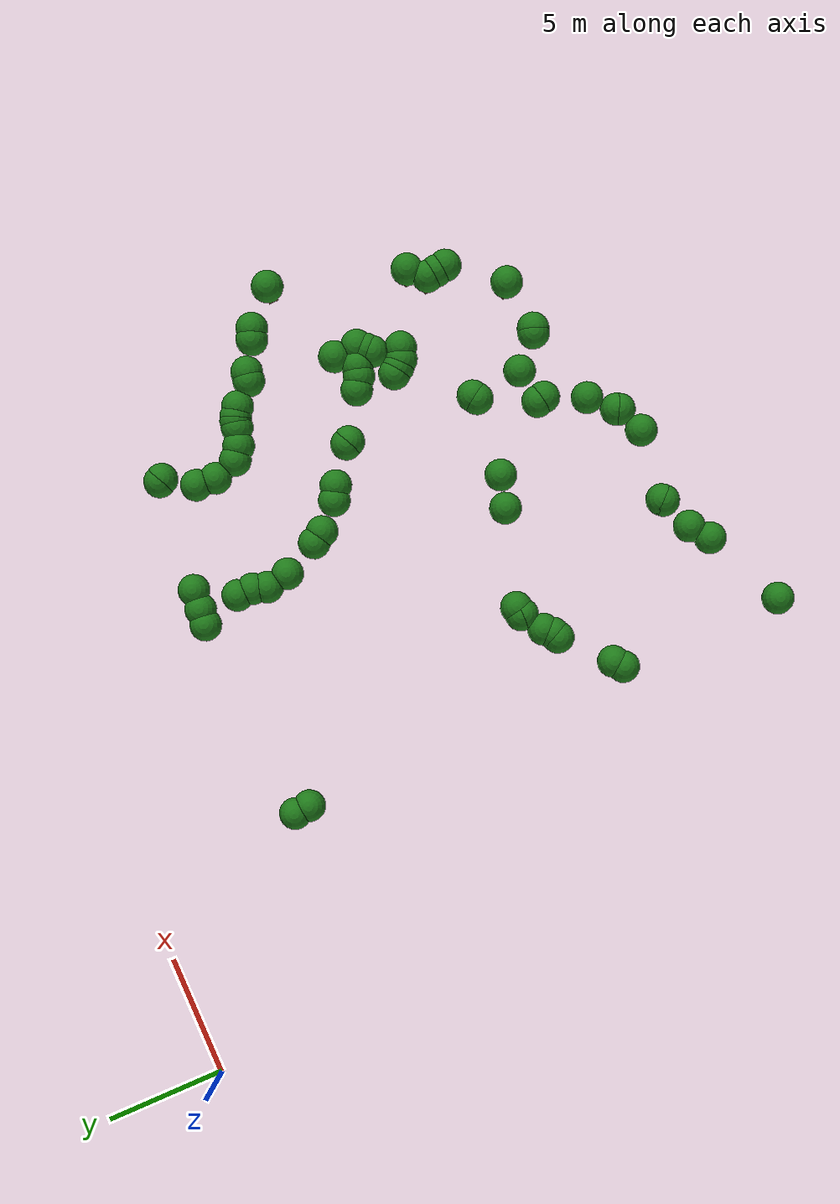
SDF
<sdf version="1.8">
 <model name="bush_trail_nav_walls">
  <static>true</static>
  <link name="trail_wall_290">
   <pose>16.921 -6.891 0.750 0 0 0</pose>
   <collision name="c"><geometry><box><size>0.400 0.400 1.500</size></box></geometry></collision>
   <visual name="v">
    <geometry><box><size>0.400 0.400 1.500</size></box></geometry>
    <material><ambient>0.35 0.25 0.15 1</ambient><diffuse>0.45 0.32 0.18 1</diffuse></material>
   </visual>
   <visual name="leaves">
    <pose>0 0 1.200 0 0 0</pose>
    <geometry><sphere><radius>0.650</radius></sphere></geometry>
    <material><ambient>0.08 0.35 0.08 1</ambient><diffuse>0.12 0.48 0.10 1</diffuse></material>
   </visual>
  </link>
  <link name="trail_wall_291">
   <pose>17.566 -6.950 0.750 0 0 0</pose>
   <collision name="c"><geometry><box><size>0.400 0.400 1.500</size></box></geometry></collision>
   <visual name="v">
    <geometry><box><size>0.400 0.400 1.500</size></box></geometry>
    <material><ambient>0.35 0.25 0.15 1</ambient><diffuse>0.45 0.32 0.18 1</diffuse></material>
   </visual>
   <visual name="leaves">
    <pose>0 0 1.200 0 0 0</pose>
    <geometry><sphere><radius>0.650</radius></sphere></geometry>
    <material><ambient>0.08 0.35 0.08 1</ambient><diffuse>0.12 0.48 0.10 1</diffuse></material>
   </visual>
  </link>
  <link name="trail_wall_292">
   <pose>18.387 -7.009 0.750 0 0 0</pose>
   <collision name="c"><geometry><box><size>0.400 0.400 1.500</size></box></geometry></collision>
   <visual name="v">
    <geometry><box><size>0.400 0.400 1.500</size></box></geometry>
    <material><ambient>0.35 0.25 0.15 1</ambient><diffuse>0.45 0.32 0.18 1</diffuse></material>
   </visual>
   <visual name="leaves">
    <pose>0 0 1.200 0 0 0</pose>
    <geometry><sphere><radius>0.650</radius></sphere></geometry>
    <material><ambient>0.08 0.35 0.08 1</ambient><diffuse>0.12 0.48 0.10 1</diffuse></material>
   </visual>
  </link>
  <link name="trail_wall_293">
   <pose>8.592 -7.185 0.750 0 0 0</pose>
   <collision name="c"><geometry><box><size>0.400 0.400 1.500</size></box></geometry></collision>
   <visual name="v">
    <geometry><box><size>0.400 0.400 1.500</size></box></geometry>
    <material><ambient>0.35 0.25 0.15 1</ambient><diffuse>0.45 0.32 0.18 1</diffuse></material>
   </visual>
   <visual name="leaves">
    <pose>0 0 1.200 0 0 0</pose>
    <geometry><sphere><radius>0.650</radius></sphere></geometry>
    <material><ambient>0.08 0.35 0.08 1</ambient><diffuse>0.12 0.48 0.10 1</diffuse></material>
   </visual>
  </link>
  <link name="trail_wall_295">
   <pose>22.903 -7.478 0.750 0 0 0</pose>
   <collision name="c"><geometry><box><size>0.400 0.400 1.500</size></box></geometry></collision>
   <visual name="v">
    <geometry><box><size>0.400 0.400 1.500</size></box></geometry>
    <material><ambient>0.35 0.25 0.15 1</ambient><diffuse>0.45 0.32 0.18 1</diffuse></material>
   </visual>
   <visual name="leaves">
    <pose>0 0 1.200 0 0 0</pose>
    <geometry><sphere><radius>0.650</radius></sphere></geometry>
    <material><ambient>0.08 0.35 0.08 1</ambient><diffuse>0.12 0.48 0.10 1</diffuse></material>
   </visual>
  </link>
  <link name="trail_wall_296">
   <pose>22.962 -7.595 0.750 0 0 0</pose>
   <collision name="c"><geometry><box><size>0.400 0.400 1.500</size></box></geometry></collision>
   <visual name="v">
    <geometry><box><size>0.400 0.400 1.500</size></box></geometry>
    <material><ambient>0.35 0.25 0.15 1</ambient><diffuse>0.45 0.32 0.18 1</diffuse></material>
   </visual>
   <visual name="leaves">
    <pose>0 0 1.200 0 0 0</pose>
    <geometry><sphere><radius>0.650</radius></sphere></geometry>
    <material><ambient>0.08 0.35 0.08 1</ambient><diffuse>0.12 0.48 0.10 1</diffuse></material>
   </visual>
  </link>
  <link name="trail_wall_299">
   <pose>8.651 -7.830 0.750 0 0 0</pose>
   <collision name="c"><geometry><box><size>0.400 0.400 1.500</size></box></geometry></collision>
   <visual name="v">
    <geometry><box><size>0.400 0.400 1.500</size></box></geometry>
    <material><ambient>0.35 0.25 0.15 1</ambient><diffuse>0.45 0.32 0.18 1</diffuse></material>
   </visual>
   <visual name="leaves">
    <pose>0 0 1.200 0 0 0</pose>
    <geometry><sphere><radius>0.650</radius></sphere></geometry>
    <material><ambient>0.08 0.35 0.08 1</ambient><diffuse>0.12 0.48 0.10 1</diffuse></material>
   </visual>
  </link>
  <link name="trail_wall_308">
   <pose>17.507 -8.534 0.750 0 0 0</pose>
   <collision name="c"><geometry><box><size>0.400 0.400 1.500</size></box></geometry></collision>
   <visual name="v">
    <geometry><box><size>0.400 0.400 1.500</size></box></geometry>
    <material><ambient>0.35 0.25 0.15 1</ambient><diffuse>0.45 0.32 0.18 1</diffuse></material>
   </visual>
   <visual name="leaves">
    <pose>0 0 1.200 0 0 0</pose>
    <geometry><sphere><radius>0.650</radius></sphere></geometry>
    <material><ambient>0.08 0.35 0.08 1</ambient><diffuse>0.12 0.48 0.10 1</diffuse></material>
   </visual>
  </link>
  <link name="trail_wall_311">
   <pose>22.199 -8.768 0.750 0 0 0</pose>
   <collision name="c"><geometry><box><size>0.400 0.400 1.500</size></box></geometry></collision>
   <visual name="v">
    <geometry><box><size>0.400 0.400 1.500</size></box></geometry>
    <material><ambient>0.35 0.25 0.15 1</ambient><diffuse>0.45 0.32 0.18 1</diffuse></material>
   </visual>
   <visual name="leaves">
    <pose>0 0 1.200 0 0 0</pose>
    <geometry><sphere><radius>0.650</radius></sphere></geometry>
    <material><ambient>0.08 0.35 0.08 1</ambient><diffuse>0.12 0.48 0.10 1</diffuse></material>
   </visual>
  </link>
  <link name="trail_wall_315">
   <pose>17.507 -9.179 0.750 0 0 0</pose>
   <collision name="c"><geometry><box><size>0.400 0.400 1.500</size></box></geometry></collision>
   <visual name="v">
    <geometry><box><size>0.400 0.400 1.500</size></box></geometry>
    <material><ambient>0.35 0.25 0.15 1</ambient><diffuse>0.45 0.32 0.18 1</diffuse></material>
   </visual>
   <visual name="leaves">
    <pose>0 0 1.200 0 0 0</pose>
    <geometry><sphere><radius>0.650</radius></sphere></geometry>
    <material><ambient>0.08 0.35 0.08 1</ambient><diffuse>0.12 0.48 0.10 1</diffuse></material>
   </visual>
  </link>
  <link name="trail_wall_318">
   <pose>22.141 -9.589 0.750 0 0 0</pose>
   <collision name="c"><geometry><box><size>0.400 0.400 1.500</size></box></geometry></collision>
   <visual name="v">
    <geometry><box><size>0.400 0.400 1.500</size></box></geometry>
    <material><ambient>0.35 0.25 0.15 1</ambient><diffuse>0.45 0.32 0.18 1</diffuse></material>
   </visual>
   <visual name="leaves">
    <pose>0 0 1.200 0 0 0</pose>
    <geometry><sphere><radius>0.650</radius></sphere></geometry>
    <material><ambient>0.08 0.35 0.08 1</ambient><diffuse>0.12 0.48 0.10 1</diffuse></material>
   </visual>
  </link>
  <link name="trail_wall_319">
   <pose>17.331 -9.765 0.750 0 0 0</pose>
   <collision name="c"><geometry><box><size>0.400 0.400 1.500</size></box></geometry></collision>
   <visual name="v">
    <geometry><box><size>0.400 0.400 1.500</size></box></geometry>
    <material><ambient>0.35 0.25 0.15 1</ambient><diffuse>0.45 0.32 0.18 1</diffuse></material>
   </visual>
   <visual name="leaves">
    <pose>0 0 1.200 0 0 0</pose>
    <geometry><sphere><radius>0.650</radius></sphere></geometry>
    <material><ambient>0.08 0.35 0.08 1</ambient><diffuse>0.12 0.48 0.10 1</diffuse></material>
   </visual>
  </link>
  <link name="trail_wall_324">
   <pose>22.493 -10.587 0.750 0 0 0</pose>
   <collision name="c"><geometry><box><size>0.400 0.400 1.500</size></box></geometry></collision>
   <visual name="v">
    <geometry><box><size>0.400 0.400 1.500</size></box></geometry>
    <material><ambient>0.35 0.25 0.15 1</ambient><diffuse>0.45 0.32 0.18 1</diffuse></material>
   </visual>
   <visual name="leaves">
    <pose>0 0 1.200 0 0 0</pose>
    <geometry><sphere><radius>0.650</radius></sphere></geometry>
    <material><ambient>0.08 0.35 0.08 1</ambient><diffuse>0.12 0.48 0.10 1</diffuse></material>
   </visual>
  </link>
  <link name="trail_wall_325">
   <pose>17.507 -10.704 0.750 0 0 0</pose>
   <collision name="c"><geometry><box><size>0.400 0.400 1.500</size></box></geometry></collision>
   <visual name="v">
    <geometry><box><size>0.400 0.400 1.500</size></box></geometry>
    <material><ambient>0.35 0.25 0.15 1</ambient><diffuse>0.45 0.32 0.18 1</diffuse></material>
   </visual>
   <visual name="leaves">
    <pose>0 0 1.200 0 0 0</pose>
    <geometry><sphere><radius>0.650</radius></sphere></geometry>
    <material><ambient>0.08 0.35 0.08 1</ambient><diffuse>0.12 0.48 0.10 1</diffuse></material>
   </visual>
  </link>
  <link name="trail_wall_328">
   <pose>22.962 -10.938 0.750 0 0 0</pose>
   <collision name="c"><geometry><box><size>0.400 0.400 1.500</size></box></geometry></collision>
   <visual name="v">
    <geometry><box><size>0.400 0.400 1.500</size></box></geometry>
    <material><ambient>0.35 0.25 0.15 1</ambient><diffuse>0.45 0.32 0.18 1</diffuse></material>
   </visual>
   <visual name="leaves">
    <pose>0 0 1.200 0 0 0</pose>
    <geometry><sphere><radius>0.650</radius></sphere></geometry>
    <material><ambient>0.08 0.35 0.08 1</ambient><diffuse>0.12 0.48 0.10 1</diffuse></material>
   </visual>
  </link>
  <link name="trail_wall_331">
   <pose>23.666 -11.173 0.750 0 0 0</pose>
   <collision name="c"><geometry><box><size>0.400 0.400 1.500</size></box></geometry></collision>
   <visual name="v">
    <geometry><box><size>0.400 0.400 1.500</size></box></geometry>
    <material><ambient>0.35 0.25 0.15 1</ambient><diffuse>0.45 0.32 0.18 1</diffuse></material>
   </visual>
   <visual name="leaves">
    <pose>0 0 1.200 0 0 0</pose>
    <geometry><sphere><radius>0.650</radius></sphere></geometry>
    <material><ambient>0.08 0.35 0.08 1</ambient><diffuse>0.12 0.48 0.10 1</diffuse></material>
   </visual>
  </link>
  <link name="trail_wall_332">
   <pose>23.959 -11.232 0.750 0 0 0</pose>
   <collision name="c"><geometry><box><size>0.400 0.400 1.500</size></box></geometry></collision>
   <visual name="v">
    <geometry><box><size>0.400 0.400 1.500</size></box></geometry>
    <material><ambient>0.35 0.25 0.15 1</ambient><diffuse>0.45 0.32 0.18 1</diffuse></material>
   </visual>
   <visual name="leaves">
    <pose>0 0 1.200 0 0 0</pose>
    <geometry><sphere><radius>0.650</radius></sphere></geometry>
    <material><ambient>0.08 0.35 0.08 1</ambient><diffuse>0.12 0.48 0.10 1</diffuse></material>
   </visual>
  </link>
  <link name="trail_wall_333">
   <pose>24.076 -11.290 0.750 0 0 0</pose>
   <collision name="c"><geometry><box><size>0.400 0.400 1.500</size></box></geometry></collision>
   <visual name="v">
    <geometry><box><size>0.400 0.400 1.500</size></box></geometry>
    <material><ambient>0.35 0.25 0.15 1</ambient><diffuse>0.45 0.32 0.18 1</diffuse></material>
   </visual>
   <visual name="leaves">
    <pose>0 0 1.200 0 0 0</pose>
    <geometry><sphere><radius>0.650</radius></sphere></geometry>
    <material><ambient>0.08 0.35 0.08 1</ambient><diffuse>0.12 0.48 0.10 1</diffuse></material>
   </visual>
  </link>
  <link name="trail_wall_336">
   <pose>24.428 -11.525 0.750 0 0 0</pose>
   <collision name="c"><geometry><box><size>0.400 0.400 1.500</size></box></geometry></collision>
   <visual name="v">
    <geometry><box><size>0.400 0.400 1.500</size></box></geometry>
    <material><ambient>0.35 0.25 0.15 1</ambient><diffuse>0.45 0.32 0.18 1</diffuse></material>
   </visual>
   <visual name="leaves">
    <pose>0 0 1.200 0 0 0</pose>
    <geometry><sphere><radius>0.650</radius></sphere></geometry>
    <material><ambient>0.08 0.35 0.08 1</ambient><diffuse>0.12 0.48 0.10 1</diffuse></material>
   </visual>
  </link>
  <link name="trail_wall_341">
   <pose>18.211 -12.170 0.750 0 0 0</pose>
   <collision name="c"><geometry><box><size>0.400 0.400 1.500</size></box></geometry></collision>
   <visual name="v">
    <geometry><box><size>0.400 0.400 1.500</size></box></geometry>
    <material><ambient>0.35 0.25 0.15 1</ambient><diffuse>0.45 0.32 0.18 1</diffuse></material>
   </visual>
   <visual name="leaves">
    <pose>0 0 1.200 0 0 0</pose>
    <geometry><sphere><radius>0.650</radius></sphere></geometry>
    <material><ambient>0.08 0.35 0.08 1</ambient><diffuse>0.12 0.48 0.10 1</diffuse></material>
   </visual>
  </link>
  <link name="trail_wall_343">
   <pose>25.191 -12.346 0.750 0 0 0</pose>
   <collision name="c"><geometry><box><size>0.400 0.400 1.500</size></box></geometry></collision>
   <visual name="v">
    <geometry><box><size>0.400 0.400 1.500</size></box></geometry>
    <material><ambient>0.35 0.25 0.15 1</ambient><diffuse>0.45 0.32 0.18 1</diffuse></material>
   </visual>
   <visual name="leaves">
    <pose>0 0 1.200 0 0 0</pose>
    <geometry><sphere><radius>0.650</radius></sphere></geometry>
    <material><ambient>0.08 0.35 0.08 1</ambient><diffuse>0.12 0.48 0.10 1</diffuse></material>
   </visual>
  </link>
  <link name="trail_wall_344">
   <pose>25.543 -12.405 0.750 0 0 0</pose>
   <collision name="c"><geometry><box><size>0.400 0.400 1.500</size></box></geometry></collision>
   <visual name="v">
    <geometry><box><size>0.400 0.400 1.500</size></box></geometry>
    <material><ambient>0.35 0.25 0.15 1</ambient><diffuse>0.45 0.32 0.18 1</diffuse></material>
   </visual>
   <visual name="leaves">
    <pose>0 0 1.200 0 0 0</pose>
    <geometry><sphere><radius>0.650</radius></sphere></geometry>
    <material><ambient>0.08 0.35 0.08 1</ambient><diffuse>0.12 0.48 0.10 1</diffuse></material>
   </visual>
  </link>
  <link name="trail_wall_347">
   <pose>18.504 -12.639 0.750 0 0 0</pose>
   <collision name="c"><geometry><box><size>0.400 0.400 1.500</size></box></geometry></collision>
   <visual name="v">
    <geometry><box><size>0.400 0.400 1.500</size></box></geometry>
    <material><ambient>0.35 0.25 0.15 1</ambient><diffuse>0.45 0.32 0.18 1</diffuse></material>
   </visual>
   <visual name="leaves">
    <pose>0 0 1.200 0 0 0</pose>
    <geometry><sphere><radius>0.650</radius></sphere></geometry>
    <material><ambient>0.08 0.35 0.08 1</ambient><diffuse>0.12 0.48 0.10 1</diffuse></material>
   </visual>
  </link>
  <link name="trail_wall_353">
   <pose>26.657 -13.109 0.750 0 0 0</pose>
   <collision name="c"><geometry><box><size>0.400 0.400 1.500</size></box></geometry></collision>
   <visual name="v">
    <geometry><box><size>0.400 0.400 1.500</size></box></geometry>
    <material><ambient>0.35 0.25 0.15 1</ambient><diffuse>0.45 0.32 0.18 1</diffuse></material>
   </visual>
   <visual name="leaves">
    <pose>0 0 1.200 0 0 0</pose>
    <geometry><sphere><radius>0.650</radius></sphere></geometry>
    <material><ambient>0.08 0.35 0.08 1</ambient><diffuse>0.12 0.48 0.10 1</diffuse></material>
   </visual>
  </link>
  <link name="trail_wall_356">
   <pose>27.067 -13.284 0.750 0 0 0</pose>
   <collision name="c"><geometry><box><size>0.400 0.400 1.500</size></box></geometry></collision>
   <visual name="v">
    <geometry><box><size>0.400 0.400 1.500</size></box></geometry>
    <material><ambient>0.35 0.25 0.15 1</ambient><diffuse>0.45 0.32 0.18 1</diffuse></material>
   </visual>
   <visual name="leaves">
    <pose>0 0 1.200 0 0 0</pose>
    <geometry><sphere><radius>0.650</radius></sphere></geometry>
    <material><ambient>0.08 0.35 0.08 1</ambient><diffuse>0.12 0.48 0.10 1</diffuse></material>
   </visual>
  </link>
  <link name="trail_wall_359">
   <pose>19.443 -13.578 0.750 0 0 0</pose>
   <collision name="c"><geometry><box><size>0.400 0.400 1.500</size></box></geometry></collision>
   <visual name="v">
    <geometry><box><size>0.400 0.400 1.500</size></box></geometry>
    <material><ambient>0.35 0.25 0.15 1</ambient><diffuse>0.45 0.32 0.18 1</diffuse></material>
   </visual>
   <visual name="leaves">
    <pose>0 0 1.200 0 0 0</pose>
    <geometry><sphere><radius>0.650</radius></sphere></geometry>
    <material><ambient>0.08 0.35 0.08 1</ambient><diffuse>0.12 0.48 0.10 1</diffuse></material>
   </visual>
  </link>
  <link name="trail_wall_361">
   <pose>19.971 -13.871 0.750 0 0 0</pose>
   <collision name="c"><geometry><box><size>0.400 0.400 1.500</size></box></geometry></collision>
   <visual name="v">
    <geometry><box><size>0.400 0.400 1.500</size></box></geometry>
    <material><ambient>0.35 0.25 0.15 1</ambient><diffuse>0.45 0.32 0.18 1</diffuse></material>
   </visual>
   <visual name="leaves">
    <pose>0 0 1.200 0 0 0</pose>
    <geometry><sphere><radius>0.650</radius></sphere></geometry>
    <material><ambient>0.08 0.35 0.08 1</ambient><diffuse>0.12 0.48 0.10 1</diffuse></material>
   </visual>
  </link>
  <link name="trail_wall_365">
   <pose>28.358 -14.516 0.750 0 0 0</pose>
   <collision name="c"><geometry><box><size>0.400 0.400 1.500</size></box></geometry></collision>
   <visual name="v">
    <geometry><box><size>0.400 0.400 1.500</size></box></geometry>
    <material><ambient>0.35 0.25 0.15 1</ambient><diffuse>0.45 0.32 0.18 1</diffuse></material>
   </visual>
   <visual name="leaves">
    <pose>0 0 1.200 0 0 0</pose>
    <geometry><sphere><radius>0.650</radius></sphere></geometry>
    <material><ambient>0.08 0.35 0.08 1</ambient><diffuse>0.12 0.48 0.10 1</diffuse></material>
   </visual>
  </link>
  <link name="trail_wall_369">
   <pose>21.320 -14.927 0.750 0 0 0</pose>
   <collision name="c"><geometry><box><size>0.400 0.400 1.500</size></box></geometry></collision>
   <visual name="v">
    <geometry><box><size>0.400 0.400 1.500</size></box></geometry>
    <material><ambient>0.35 0.25 0.15 1</ambient><diffuse>0.45 0.32 0.18 1</diffuse></material>
   </visual>
   <visual name="leaves">
    <pose>0 0 1.200 0 0 0</pose>
    <geometry><sphere><radius>0.650</radius></sphere></geometry>
    <material><ambient>0.08 0.35 0.08 1</ambient><diffuse>0.12 0.48 0.10 1</diffuse></material>
   </visual>
  </link>
  <link name="trail_wall_370">
   <pose>21.378 -15.044 0.750 0 0 0</pose>
   <collision name="c"><geometry><box><size>0.400 0.400 1.500</size></box></geometry></collision>
   <visual name="v">
    <geometry><box><size>0.400 0.400 1.500</size></box></geometry>
    <material><ambient>0.35 0.25 0.15 1</ambient><diffuse>0.45 0.32 0.18 1</diffuse></material>
   </visual>
   <visual name="leaves">
    <pose>0 0 1.200 0 0 0</pose>
    <geometry><sphere><radius>0.650</radius></sphere></geometry>
    <material><ambient>0.08 0.35 0.08 1</ambient><diffuse>0.12 0.48 0.10 1</diffuse></material>
   </visual>
  </link>
  <link name="trail_wall_378">
   <pose>24.721 -15.865 0.750 0 0 0</pose>
   <collision name="c"><geometry><box><size>0.400 0.400 1.500</size></box></geometry></collision>
   <visual name="v">
    <geometry><box><size>0.400 0.400 1.500</size></box></geometry>
    <material><ambient>0.35 0.25 0.15 1</ambient><diffuse>0.45 0.32 0.18 1</diffuse></material>
   </visual>
   <visual name="leaves">
    <pose>0 0 1.200 0 0 0</pose>
    <geometry><sphere><radius>0.650</radius></sphere></geometry>
    <material><ambient>0.08 0.35 0.08 1</ambient><diffuse>0.12 0.48 0.10 1</diffuse></material>
   </visual>
  </link>
  <link name="trail_wall_380">
   <pose>23.138 -16.158 0.750 0 0 0</pose>
   <collision name="c"><geometry><box><size>0.400 0.400 1.500</size></box></geometry></collision>
   <visual name="v">
    <geometry><box><size>0.400 0.400 1.500</size></box></geometry>
    <material><ambient>0.35 0.25 0.15 1</ambient><diffuse>0.45 0.32 0.18 1</diffuse></material>
   </visual>
   <visual name="leaves">
    <pose>0 0 1.200 0 0 0</pose>
    <geometry><sphere><radius>0.650</radius></sphere></geometry>
    <material><ambient>0.08 0.35 0.08 1</ambient><diffuse>0.12 0.48 0.10 1</diffuse></material>
   </visual>
  </link>
  <link name="trail_wall_382">
   <pose>23.607 -16.452 0.750 0 0 0</pose>
   <collision name="c"><geometry><box><size>0.400 0.400 1.500</size></box></geometry></collision>
   <visual name="v">
    <geometry><box><size>0.400 0.400 1.500</size></box></geometry>
    <material><ambient>0.35 0.25 0.15 1</ambient><diffuse>0.45 0.32 0.18 1</diffuse></material>
   </visual>
   <visual name="leaves">
    <pose>0 0 1.200 0 0 0</pose>
    <geometry><sphere><radius>0.650</radius></sphere></geometry>
    <material><ambient>0.08 0.35 0.08 1</ambient><diffuse>0.12 0.48 0.10 1</diffuse></material>
   </visual>
  </link>
  <link name="trail_wall_383">
   <pose>24.018 -16.569 0.750 0 0 0</pose>
   <collision name="c"><geometry><box><size>0.400 0.400 1.500</size></box></geometry></collision>
   <visual name="v">
    <geometry><box><size>0.400 0.400 1.500</size></box></geometry>
    <material><ambient>0.35 0.25 0.15 1</ambient><diffuse>0.45 0.32 0.18 1</diffuse></material>
   </visual>
   <visual name="leaves">
    <pose>0 0 1.200 0 0 0</pose>
    <geometry><sphere><radius>0.650</radius></sphere></geometry>
    <material><ambient>0.08 0.35 0.08 1</ambient><diffuse>0.12 0.48 0.10 1</diffuse></material>
   </visual>
  </link>
  <link name="trail_wall_385">
   <pose>24.780 -16.862 0.750 0 0 0</pose>
   <collision name="c"><geometry><box><size>0.400 0.400 1.500</size></box></geometry></collision>
   <visual name="v">
    <geometry><box><size>0.400 0.400 1.500</size></box></geometry>
    <material><ambient>0.35 0.25 0.15 1</ambient><diffuse>0.45 0.32 0.18 1</diffuse></material>
   </visual>
   <visual name="leaves">
    <pose>0 0 1.200 0 0 0</pose>
    <geometry><sphere><radius>0.650</radius></sphere></geometry>
    <material><ambient>0.08 0.35 0.08 1</ambient><diffuse>0.12 0.48 0.10 1</diffuse></material>
   </visual>
  </link>
  <link name="trail_wall_387">
   <pose>24.487 -17.155 0.750 0 0 0</pose>
   <collision name="c"><geometry><box><size>0.400 0.400 1.500</size></box></geometry></collision>
   <visual name="v">
    <geometry><box><size>0.400 0.400 1.500</size></box></geometry>
    <material><ambient>0.35 0.25 0.15 1</ambient><diffuse>0.45 0.32 0.18 1</diffuse></material>
   </visual>
   <visual name="leaves">
    <pose>0 0 1.200 0 0 0</pose>
    <geometry><sphere><radius>0.650</radius></sphere></geometry>
    <material><ambient>0.08 0.35 0.08 1</ambient><diffuse>0.12 0.48 0.10 1</diffuse></material>
   </visual>
  </link>
  <link name="trail_wall_388">
   <pose>24.311 -17.331 0.750 0 0 0</pose>
   <collision name="c"><geometry><box><size>0.400 0.400 1.500</size></box></geometry></collision>
   <visual name="v">
    <geometry><box><size>0.400 0.400 1.500</size></box></geometry>
    <material><ambient>0.35 0.25 0.15 1</ambient><diffuse>0.45 0.32 0.18 1</diffuse></material>
   </visual>
   <visual name="leaves">
    <pose>0 0 1.200 0 0 0</pose>
    <geometry><sphere><radius>0.650</radius></sphere></geometry>
    <material><ambient>0.08 0.35 0.08 1</ambient><diffuse>0.12 0.48 0.10 1</diffuse></material>
   </visual>
  </link>
  <link name="trail_wall_390">
   <pose>23.138 -17.801 0.750 0 0 0</pose>
   <collision name="c"><geometry><box><size>0.400 0.400 1.500</size></box></geometry></collision>
   <visual name="v">
    <geometry><box><size>0.400 0.400 1.500</size></box></geometry>
    <material><ambient>0.35 0.25 0.15 1</ambient><diffuse>0.45 0.32 0.18 1</diffuse></material>
   </visual>
   <visual name="leaves">
    <pose>0 0 1.200 0 0 0</pose>
    <geometry><sphere><radius>0.650</radius></sphere></geometry>
    <material><ambient>0.08 0.35 0.08 1</ambient><diffuse>0.12 0.48 0.10 1</diffuse></material>
   </visual>
  </link>
  <link name="trail_wall_391">
   <pose>23.314 -18.035 0.750 0 0 0</pose>
   <collision name="c"><geometry><box><size>0.400 0.400 1.500</size></box></geometry></collision>
   <visual name="v">
    <geometry><box><size>0.400 0.400 1.500</size></box></geometry>
    <material><ambient>0.35 0.25 0.15 1</ambient><diffuse>0.45 0.32 0.18 1</diffuse></material>
   </visual>
   <visual name="leaves">
    <pose>0 0 1.200 0 0 0</pose>
    <geometry><sphere><radius>0.650</radius></sphere></geometry>
    <material><ambient>0.08 0.35 0.08 1</ambient><diffuse>0.12 0.48 0.10 1</diffuse></material>
   </visual>
  </link>
  <link name="trail_wall_392">
   <pose>23.548 -18.270 0.750 0 0 0</pose>
   <collision name="c"><geometry><box><size>0.400 0.400 1.500</size></box></geometry></collision>
   <visual name="v">
    <geometry><box><size>0.400 0.400 1.500</size></box></geometry>
    <material><ambient>0.35 0.25 0.15 1</ambient><diffuse>0.45 0.32 0.18 1</diffuse></material>
   </visual>
   <visual name="leaves">
    <pose>0 0 1.200 0 0 0</pose>
    <geometry><sphere><radius>0.650</radius></sphere></geometry>
    <material><ambient>0.08 0.35 0.08 1</ambient><diffuse>0.12 0.48 0.10 1</diffuse></material>
   </visual>
  </link>
  <link name="trail_wall_393">
   <pose>24.018 -18.446 0.750 0 0 0</pose>
   <collision name="c"><geometry><box><size>0.400 0.400 1.500</size></box></geometry></collision>
   <visual name="v">
    <geometry><box><size>0.400 0.400 1.500</size></box></geometry>
    <material><ambient>0.35 0.25 0.15 1</ambient><diffuse>0.45 0.32 0.18 1</diffuse></material>
   </visual>
   <visual name="leaves">
    <pose>0 0 1.200 0 0 0</pose>
    <geometry><sphere><radius>0.650</radius></sphere></geometry>
    <material><ambient>0.08 0.35 0.08 1</ambient><diffuse>0.12 0.48 0.10 1</diffuse></material>
   </visual>
  </link>
  <link name="trail_wall_394">
   <pose>12.639 -18.563 0.750 0 0 0</pose>
   <collision name="c"><geometry><box><size>0.400 0.400 1.500</size></box></geometry></collision>
   <visual name="v">
    <geometry><box><size>0.400 0.400 1.500</size></box></geometry>
    <material><ambient>0.35 0.25 0.15 1</ambient><diffuse>0.45 0.32 0.18 1</diffuse></material>
   </visual>
   <visual name="leaves">
    <pose>0 0 1.200 0 0 0</pose>
    <geometry><sphere><radius>0.650</radius></sphere></geometry>
    <material><ambient>0.08 0.35 0.08 1</ambient><diffuse>0.12 0.48 0.10 1</diffuse></material>
   </visual>
  </link>
  <link name="trail_wall_395">
   <pose>12.287 -18.622 0.750 0 0 0</pose>
   <collision name="c"><geometry><box><size>0.400 0.400 1.500</size></box></geometry></collision>
   <visual name="v">
    <geometry><box><size>0.400 0.400 1.500</size></box></geometry>
    <material><ambient>0.35 0.25 0.15 1</ambient><diffuse>0.45 0.32 0.18 1</diffuse></material>
   </visual>
   <visual name="leaves">
    <pose>0 0 1.200 0 0 0</pose>
    <geometry><sphere><radius>0.650</radius></sphere></geometry>
    <material><ambient>0.08 0.35 0.08 1</ambient><diffuse>0.12 0.48 0.10 1</diffuse></material>
   </visual>
  </link>
  <link name="trail_wall_396">
   <pose>12.287 -18.680 0.750 0 0 0</pose>
   <collision name="c"><geometry><box><size>0.400 0.400 1.500</size></box></geometry></collision>
   <visual name="v">
    <geometry><box><size>0.400 0.400 1.500</size></box></geometry>
    <material><ambient>0.35 0.25 0.15 1</ambient><diffuse>0.45 0.32 0.18 1</diffuse></material>
   </visual>
   <visual name="leaves">
    <pose>0 0 1.200 0 0 0</pose>
    <geometry><sphere><radius>0.650</radius></sphere></geometry>
    <material><ambient>0.08 0.35 0.08 1</ambient><diffuse>0.12 0.48 0.10 1</diffuse></material>
   </visual>
  </link>
  <link name="trail_wall_401">
   <pose>11.408 -19.208 0.750 0 0 0</pose>
   <collision name="c"><geometry><box><size>0.400 0.400 1.500</size></box></geometry></collision>
   <visual name="v">
    <geometry><box><size>0.400 0.400 1.500</size></box></geometry>
    <material><ambient>0.35 0.25 0.15 1</ambient><diffuse>0.45 0.32 0.18 1</diffuse></material>
   </visual>
   <visual name="leaves">
    <pose>0 0 1.200 0 0 0</pose>
    <geometry><sphere><radius>0.650</radius></sphere></geometry>
    <material><ambient>0.08 0.35 0.08 1</ambient><diffuse>0.12 0.48 0.10 1</diffuse></material>
   </visual>
  </link>
  <link name="trail_wall_405">
   <pose>11.114 -19.501 0.750 0 0 0</pose>
   <collision name="c"><geometry><box><size>0.400 0.400 1.500</size></box></geometry></collision>
   <visual name="v">
    <geometry><box><size>0.400 0.400 1.500</size></box></geometry>
    <material><ambient>0.35 0.25 0.15 1</ambient><diffuse>0.45 0.32 0.18 1</diffuse></material>
   </visual>
   <visual name="leaves">
    <pose>0 0 1.200 0 0 0</pose>
    <geometry><sphere><radius>0.650</radius></sphere></geometry>
    <material><ambient>0.08 0.35 0.08 1</ambient><diffuse>0.12 0.48 0.10 1</diffuse></material>
   </visual>
  </link>
  <link name="trail_wall_406">
   <pose>10.880 -19.619 0.750 0 0 0</pose>
   <collision name="c"><geometry><box><size>0.400 0.400 1.500</size></box></geometry></collision>
   <visual name="v">
    <geometry><box><size>0.400 0.400 1.500</size></box></geometry>
    <material><ambient>0.35 0.25 0.15 1</ambient><diffuse>0.45 0.32 0.18 1</diffuse></material>
   </visual>
   <visual name="leaves">
    <pose>0 0 1.200 0 0 0</pose>
    <geometry><sphere><radius>0.650</radius></sphere></geometry>
    <material><ambient>0.08 0.35 0.08 1</ambient><diffuse>0.12 0.48 0.10 1</diffuse></material>
   </visual>
  </link>
  <link name="trail_wall_408">
   <pose>16.452 -19.736 0.750 0 0 0</pose>
   <collision name="c"><geometry><box><size>0.400 0.400 1.500</size></box></geometry></collision>
   <visual name="v">
    <geometry><box><size>0.400 0.400 1.500</size></box></geometry>
    <material><ambient>0.35 0.25 0.15 1</ambient><diffuse>0.45 0.32 0.18 1</diffuse></material>
   </visual>
   <visual name="leaves">
    <pose>0 0 1.200 0 0 0</pose>
    <geometry><sphere><radius>0.650</radius></sphere></geometry>
    <material><ambient>0.08 0.35 0.08 1</ambient><diffuse>0.12 0.48 0.10 1</diffuse></material>
   </visual>
  </link>
  <link name="trail_wall_411">
   <pose>26.774 -19.912 0.750 0 0 0</pose>
   <collision name="c"><geometry><box><size>0.400 0.400 1.500</size></box></geometry></collision>
   <visual name="v">
    <geometry><box><size>0.400 0.400 1.500</size></box></geometry>
    <material><ambient>0.35 0.25 0.15 1</ambient><diffuse>0.45 0.32 0.18 1</diffuse></material>
   </visual>
   <visual name="leaves">
    <pose>0 0 1.200 0 0 0</pose>
    <geometry><sphere><radius>0.650</radius></sphere></geometry>
    <material><ambient>0.08 0.35 0.08 1</ambient><diffuse>0.12 0.48 0.10 1</diffuse></material>
   </visual>
  </link>
  <link name="trail_wall_413">
   <pose>17.742 -20.088 0.750 0 0 0</pose>
   <collision name="c"><geometry><box><size>0.400 0.400 1.500</size></box></geometry></collision>
   <visual name="v">
    <geometry><box><size>0.400 0.400 1.500</size></box></geometry>
    <material><ambient>0.35 0.25 0.15 1</ambient><diffuse>0.45 0.32 0.18 1</diffuse></material>
   </visual>
   <visual name="leaves">
    <pose>0 0 1.200 0 0 0</pose>
    <geometry><sphere><radius>0.650</radius></sphere></geometry>
    <material><ambient>0.08 0.35 0.08 1</ambient><diffuse>0.12 0.48 0.10 1</diffuse></material>
   </visual>
  </link>
  <link name="trail_wall_415">
   <pose>21.085 -20.323 0.750 0 0 0</pose>
   <collision name="c"><geometry><box><size>0.400 0.400 1.500</size></box></geometry></collision>
   <visual name="v">
    <geometry><box><size>0.400 0.400 1.500</size></box></geometry>
    <material><ambient>0.35 0.25 0.15 1</ambient><diffuse>0.45 0.32 0.18 1</diffuse></material>
   </visual>
   <visual name="leaves">
    <pose>0 0 1.200 0 0 0</pose>
    <geometry><sphere><radius>0.650</radius></sphere></geometry>
    <material><ambient>0.08 0.35 0.08 1</ambient><diffuse>0.12 0.48 0.10 1</diffuse></material>
   </visual>
  </link>
  <link name="trail_wall_416">
   <pose>20.909 -20.440 0.750 0 0 0</pose>
   <collision name="c"><geometry><box><size>0.400 0.400 1.500</size></box></geometry></collision>
   <visual name="v">
    <geometry><box><size>0.400 0.400 1.500</size></box></geometry>
    <material><ambient>0.35 0.25 0.15 1</ambient><diffuse>0.45 0.32 0.18 1</diffuse></material>
   </visual>
   <visual name="leaves">
    <pose>0 0 1.200 0 0 0</pose>
    <geometry><sphere><radius>0.650</radius></sphere></geometry>
    <material><ambient>0.08 0.35 0.08 1</ambient><diffuse>0.12 0.48 0.10 1</diffuse></material>
   </visual>
  </link>
  <link name="trail_wall_417">
   <pose>26.188 -20.557 0.750 0 0 0</pose>
   <collision name="c"><geometry><box><size>0.400 0.400 1.500</size></box></geometry></collision>
   <visual name="v">
    <geometry><box><size>0.400 0.400 1.500</size></box></geometry>
    <material><ambient>0.35 0.25 0.15 1</ambient><diffuse>0.45 0.32 0.18 1</diffuse></material>
   </visual>
   <visual name="leaves">
    <pose>0 0 1.200 0 0 0</pose>
    <geometry><sphere><radius>0.650</radius></sphere></geometry>
    <material><ambient>0.08 0.35 0.08 1</ambient><diffuse>0.12 0.48 0.10 1</diffuse></material>
   </visual>
  </link>
  <link name="trail_wall_431">
   <pose>26.246 -20.968 0.750 0 0 0</pose>
   <collision name="c"><geometry><box><size>0.400 0.400 1.500</size></box></geometry></collision>
   <visual name="v">
    <geometry><box><size>0.400 0.400 1.500</size></box></geometry>
    <material><ambient>0.35 0.25 0.15 1</ambient><diffuse>0.45 0.32 0.18 1</diffuse></material>
   </visual>
   <visual name="leaves">
    <pose>0 0 1.200 0 0 0</pose>
    <geometry><sphere><radius>0.650</radius></sphere></geometry>
    <material><ambient>0.08 0.35 0.08 1</ambient><diffuse>0.12 0.48 0.10 1</diffuse></material>
   </visual>
  </link>
  <link name="trail_wall_434">
   <pose>9.120 -21.261 0.750 0 0 0</pose>
   <collision name="c"><geometry><box><size>0.400 0.400 1.500</size></box></geometry></collision>
   <visual name="v">
    <geometry><box><size>0.400 0.400 1.500</size></box></geometry>
    <material><ambient>0.35 0.25 0.15 1</ambient><diffuse>0.45 0.32 0.18 1</diffuse></material>
   </visual>
   <visual name="leaves">
    <pose>0 0 1.200 0 0 0</pose>
    <geometry><sphere><radius>0.650</radius></sphere></geometry>
    <material><ambient>0.08 0.35 0.08 1</ambient><diffuse>0.12 0.48 0.10 1</diffuse></material>
   </visual>
  </link>
  <link name="trail_wall_435">
   <pose>26.305 -21.378 0.750 0 0 0</pose>
   <collision name="c"><geometry><box><size>0.400 0.400 1.500</size></box></geometry></collision>
   <visual name="v">
    <geometry><box><size>0.400 0.400 1.500</size></box></geometry>
    <material><ambient>0.35 0.25 0.15 1</ambient><diffuse>0.45 0.32 0.18 1</diffuse></material>
   </visual>
   <visual name="leaves">
    <pose>0 0 1.200 0 0 0</pose>
    <geometry><sphere><radius>0.650</radius></sphere></geometry>
    <material><ambient>0.08 0.35 0.08 1</ambient><diffuse>0.12 0.48 0.10 1</diffuse></material>
   </visual>
  </link>
  <link name="trail_wall_436">
   <pose>8.768 -21.554 0.750 0 0 0</pose>
   <collision name="c"><geometry><box><size>0.400 0.400 1.500</size></box></geometry></collision>
   <visual name="v">
    <geometry><box><size>0.400 0.400 1.500</size></box></geometry>
    <material><ambient>0.35 0.25 0.15 1</ambient><diffuse>0.45 0.32 0.18 1</diffuse></material>
   </visual>
   <visual name="leaves">
    <pose>0 0 1.200 0 0 0</pose>
    <geometry><sphere><radius>0.650</radius></sphere></geometry>
    <material><ambient>0.08 0.35 0.08 1</ambient><diffuse>0.12 0.48 0.10 1</diffuse></material>
   </visual>
  </link>
  <link name="trail_wall_442">
   <pose>21.261 -22.434 0.750 0 0 0</pose>
   <collision name="c"><geometry><box><size>0.400 0.400 1.500</size></box></geometry></collision>
   <visual name="v">
    <geometry><box><size>0.400 0.400 1.500</size></box></geometry>
    <material><ambient>0.35 0.25 0.15 1</ambient><diffuse>0.45 0.32 0.18 1</diffuse></material>
   </visual>
   <visual name="leaves">
    <pose>0 0 1.200 0 0 0</pose>
    <geometry><sphere><radius>0.650</radius></sphere></geometry>
    <material><ambient>0.08 0.35 0.08 1</ambient><diffuse>0.12 0.48 0.10 1</diffuse></material>
   </visual>
  </link>
  <link name="trail_wall_444">
   <pose>19.853 -22.610 0.750 0 0 0</pose>
   <collision name="c"><geometry><box><size>0.400 0.400 1.500</size></box></geometry></collision>
   <visual name="v">
    <geometry><box><size>0.400 0.400 1.500</size></box></geometry>
    <material><ambient>0.35 0.25 0.15 1</ambient><diffuse>0.45 0.32 0.18 1</diffuse></material>
   </visual>
   <visual name="leaves">
    <pose>0 0 1.200 0 0 0</pose>
    <geometry><sphere><radius>0.650</radius></sphere></geometry>
    <material><ambient>0.08 0.35 0.08 1</ambient><diffuse>0.12 0.48 0.10 1</diffuse></material>
   </visual>
  </link>
  <link name="trail_wall_448">
   <pose>19.912 -22.903 0.750 0 0 0</pose>
   <collision name="c"><geometry><box><size>0.400 0.400 1.500</size></box></geometry></collision>
   <visual name="v">
    <geometry><box><size>0.400 0.400 1.500</size></box></geometry>
    <material><ambient>0.35 0.25 0.15 1</ambient><diffuse>0.45 0.32 0.18 1</diffuse></material>
   </visual>
   <visual name="leaves">
    <pose>0 0 1.200 0 0 0</pose>
    <geometry><sphere><radius>0.650</radius></sphere></geometry>
    <material><ambient>0.08 0.35 0.08 1</ambient><diffuse>0.12 0.48 0.10 1</diffuse></material>
   </visual>
  </link>
  <link name="trail_wall_453">
   <pose>24.721 -23.372 0.750 0 0 0</pose>
   <collision name="c"><geometry><box><size>0.400 0.400 1.500</size></box></geometry></collision>
   <visual name="v">
    <geometry><box><size>0.400 0.400 1.500</size></box></geometry>
    <material><ambient>0.35 0.25 0.15 1</ambient><diffuse>0.45 0.32 0.18 1</diffuse></material>
   </visual>
   <visual name="leaves">
    <pose>0 0 1.200 0 0 0</pose>
    <geometry><sphere><radius>0.650</radius></sphere></geometry>
    <material><ambient>0.08 0.35 0.08 1</ambient><diffuse>0.12 0.48 0.10 1</diffuse></material>
   </visual>
  </link>
  <link name="trail_wall_455">
   <pose>22.434 -23.548 0.750 0 0 0</pose>
   <collision name="c"><geometry><box><size>0.400 0.400 1.500</size></box></geometry></collision>
   <visual name="v">
    <geometry><box><size>0.400 0.400 1.500</size></box></geometry>
    <material><ambient>0.35 0.25 0.15 1</ambient><diffuse>0.45 0.32 0.18 1</diffuse></material>
   </visual>
   <visual name="leaves">
    <pose>0 0 1.200 0 0 0</pose>
    <geometry><sphere><radius>0.650</radius></sphere></geometry>
    <material><ambient>0.08 0.35 0.08 1</ambient><diffuse>0.12 0.48 0.10 1</diffuse></material>
   </visual>
  </link>
  <link name="trail_wall_456">
   <pose>22.610 -23.607 0.750 0 0 0</pose>
   <collision name="c"><geometry><box><size>0.400 0.400 1.500</size></box></geometry></collision>
   <visual name="v">
    <geometry><box><size>0.400 0.400 1.500</size></box></geometry>
    <material><ambient>0.35 0.25 0.15 1</ambient><diffuse>0.45 0.32 0.18 1</diffuse></material>
   </visual>
   <visual name="leaves">
    <pose>0 0 1.200 0 0 0</pose>
    <geometry><sphere><radius>0.650</radius></sphere></geometry>
    <material><ambient>0.08 0.35 0.08 1</ambient><diffuse>0.12 0.48 0.10 1</diffuse></material>
   </visual>
  </link>
  <link name="trail_wall_465">
   <pose>19.208 -24.487 0.750 0 0 0</pose>
   <collision name="c"><geometry><box><size>0.400 0.400 1.500</size></box></geometry></collision>
   <visual name="v">
    <geometry><box><size>0.400 0.400 1.500</size></box></geometry>
    <material><ambient>0.35 0.25 0.15 1</ambient><diffuse>0.45 0.32 0.18 1</diffuse></material>
   </visual>
   <visual name="leaves">
    <pose>0 0 1.200 0 0 0</pose>
    <geometry><sphere><radius>0.650</radius></sphere></geometry>
    <material><ambient>0.08 0.35 0.08 1</ambient><diffuse>0.12 0.48 0.10 1</diffuse></material>
   </visual>
  </link>
  <link name="trail_wall_475">
   <pose>18.328 -25.367 0.750 0 0 0</pose>
   <collision name="c"><geometry><box><size>0.400 0.400 1.500</size></box></geometry></collision>
   <visual name="v">
    <geometry><box><size>0.400 0.400 1.500</size></box></geometry>
    <material><ambient>0.35 0.25 0.15 1</ambient><diffuse>0.45 0.32 0.18 1</diffuse></material>
   </visual>
   <visual name="leaves">
    <pose>0 0 1.200 0 0 0</pose>
    <geometry><sphere><radius>0.650</radius></sphere></geometry>
    <material><ambient>0.08 0.35 0.08 1</ambient><diffuse>0.12 0.48 0.10 1</diffuse></material>
   </visual>
  </link>
  <link name="trail_wall_479">
   <pose>18.270 -25.484 0.750 0 0 0</pose>
   <collision name="c"><geometry><box><size>0.400 0.400 1.500</size></box></geometry></collision>
   <visual name="v">
    <geometry><box><size>0.400 0.400 1.500</size></box></geometry>
    <material><ambient>0.35 0.25 0.15 1</ambient><diffuse>0.45 0.32 0.18 1</diffuse></material>
   </visual>
   <visual name="leaves">
    <pose>0 0 1.200 0 0 0</pose>
    <geometry><sphere><radius>0.650</radius></sphere></geometry>
    <material><ambient>0.08 0.35 0.08 1</ambient><diffuse>0.12 0.48 0.10 1</diffuse></material>
   </visual>
  </link>
  <link name="trail_wall_482">
   <pose>14.282 -25.601 0.750 0 0 0</pose>
   <collision name="c"><geometry><box><size>0.400 0.400 1.500</size></box></geometry></collision>
   <visual name="v">
    <geometry><box><size>0.400 0.400 1.500</size></box></geometry>
    <material><ambient>0.35 0.25 0.15 1</ambient><diffuse>0.45 0.32 0.18 1</diffuse></material>
   </visual>
   <visual name="leaves">
    <pose>0 0 1.200 0 0 0</pose>
    <geometry><sphere><radius>0.650</radius></sphere></geometry>
    <material><ambient>0.08 0.35 0.08 1</ambient><diffuse>0.12 0.48 0.10 1</diffuse></material>
   </visual>
  </link>
  <link name="trail_wall_483">
   <pose>14.223 -25.660 0.750 0 0 0</pose>
   <collision name="c"><geometry><box><size>0.400 0.400 1.500</size></box></geometry></collision>
   <visual name="v">
    <geometry><box><size>0.400 0.400 1.500</size></box></geometry>
    <material><ambient>0.35 0.25 0.15 1</ambient><diffuse>0.45 0.32 0.18 1</diffuse></material>
   </visual>
   <visual name="leaves">
    <pose>0 0 1.200 0 0 0</pose>
    <geometry><sphere><radius>0.650</radius></sphere></geometry>
    <material><ambient>0.08 0.35 0.08 1</ambient><diffuse>0.12 0.48 0.10 1</diffuse></material>
   </visual>
  </link>
  <link name="trail_wall_488">
   <pose>17.155 -25.953 0.750 0 0 0</pose>
   <collision name="c"><geometry><box><size>0.400 0.400 1.500</size></box></geometry></collision>
   <visual name="v">
    <geometry><box><size>0.400 0.400 1.500</size></box></geometry>
    <material><ambient>0.35 0.25 0.15 1</ambient><diffuse>0.45 0.32 0.18 1</diffuse></material>
   </visual>
   <visual name="leaves">
    <pose>0 0 1.200 0 0 0</pose>
    <geometry><sphere><radius>0.650</radius></sphere></geometry>
    <material><ambient>0.08 0.35 0.08 1</ambient><diffuse>0.12 0.48 0.10 1</diffuse></material>
   </visual>
  </link>
  <link name="trail_wall_490">
   <pose>12.874 -26.188 0.750 0 0 0</pose>
   <collision name="c"><geometry><box><size>0.400 0.400 1.500</size></box></geometry></collision>
   <visual name="v">
    <geometry><box><size>0.400 0.400 1.500</size></box></geometry>
    <material><ambient>0.35 0.25 0.15 1</ambient><diffuse>0.45 0.32 0.18 1</diffuse></material>
   </visual>
   <visual name="leaves">
    <pose>0 0 1.200 0 0 0</pose>
    <geometry><sphere><radius>0.650</radius></sphere></geometry>
    <material><ambient>0.08 0.35 0.08 1</ambient><diffuse>0.12 0.48 0.10 1</diffuse></material>
   </visual>
  </link>
  <link name="trail_wall_493">
   <pose>12.111 -26.774 0.750 0 0 0</pose>
   <collision name="c"><geometry><box><size>0.400 0.400 1.500</size></box></geometry></collision>
   <visual name="v">
    <geometry><box><size>0.400 0.400 1.500</size></box></geometry>
    <material><ambient>0.35 0.25 0.15 1</ambient><diffuse>0.45 0.32 0.18 1</diffuse></material>
   </visual>
   <visual name="leaves">
    <pose>0 0 1.200 0 0 0</pose>
    <geometry><sphere><radius>0.650</radius></sphere></geometry>
    <material><ambient>0.08 0.35 0.08 1</ambient><diffuse>0.12 0.48 0.10 1</diffuse></material>
   </visual>
  </link>
  <link name="trail_wall_506">
   <pose>8.827 -28.299 0.750 0 0 0</pose>
   <collision name="c"><geometry><box><size>0.400 0.400 1.500</size></box></geometry></collision>
   <visual name="v">
    <geometry><box><size>0.400 0.400 1.500</size></box></geometry>
    <material><ambient>0.35 0.25 0.15 1</ambient><diffuse>0.45 0.32 0.18 1</diffuse></material>
   </visual>
   <visual name="leaves">
    <pose>0 0 1.200 0 0 0</pose>
    <geometry><sphere><radius>0.650</radius></sphere></geometry>
    <material><ambient>0.08 0.35 0.08 1</ambient><diffuse>0.12 0.48 0.10 1</diffuse></material>
   </visual>
  </link>
 </model>
</sdf>
